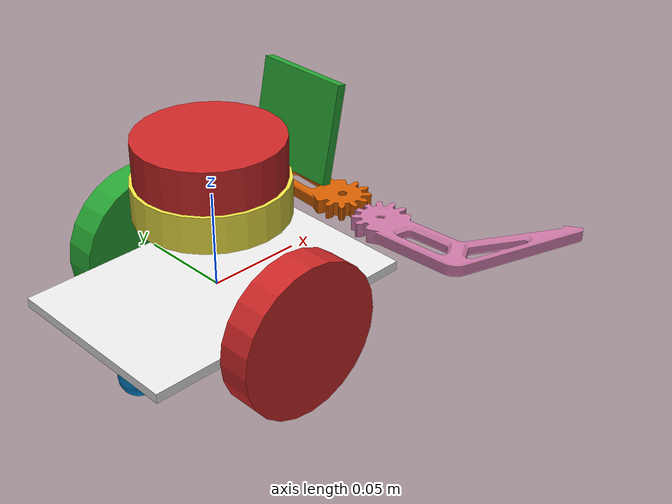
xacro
<?xml version="1.0"?>
<robot xmlns:xacro="http://www.ros.org/wiki/xacro" name="theclaw">
    <xacro:include filename="$(find theclaw)/urdf/common_properties.xacro"/>
    <xacro:include filename="$(find theclaw)/urdf/theclaw.gazebo.xacro"/>
    <xacro:property name="model_scale" value="0.01 0.01 0.01" />

    <link name="origin"/>

    <joint name="origin_joint" type="fixed">
        <parent link="origin"/>
        <child link="base_link"/>
        <origin xyz="0.0 0.0 0.0" rpy="0 0 0"/>
    </joint>

    <!-- Base -->

    <xacro:box_link name="base_link" mass="0.050" sx="0.150" sy="0.100" sz="0.005" />

    <!-- Camera -->

    <xacro:box_link name="camera_link" mass="0.001" sx="0.005" sy="0.050" sz="0.050" />

    <joint name="camera_joint" type="fixed">
        <parent link="base_link" />
        <child link="camera_link" />
        <origin rpy="0 0.2 0" xyz="0.055 0 0.07" />
    </joint>

    <!-- Laser -->

    <xacro:cylinder_link name="laser_base_link" mass="0.050" radius="${0.076/2}" length="0.0186" />

    <xacro:cylinder_link name="laser_link" mass="0.050" radius="${0.0725/2}" length="${0.041-0.0196}" />

    <joint name="laser_base_joint" type="fixed">
        <parent link="base_link" />
        <child link="laser_base_link" />
        <origin rpy="0 0 0" xyz="0 0 0.050" />
    </joint>

    <joint name="laser_head_joint" type="fixed">
        <parent link="laser_base_link" />
        <child link="laser_link" />
        <origin rpy="0 0 0" xyz="0 0 ${0.0186/2+(0.041-0.0196)/2}" />
    </joint>

    <!-- Wheels !-->

    <xacro:macro name="wheel" params="name *origin">
        <xacro:cylinder_link name="${name}_link" mass="0.035" radius="0.040" length="0.017" />
        <joint name="${name}_joint" type="continuous">
            <xacro:insert_block name="origin" />
            <parent link="base_link" />
            <child link="${name}_link" />
            <axis xyz="0 0 1" />
            <limit effort="0.07" velocity="16" />
        </joint>
        <transmission name="${name}_tran">
            <type>transmission_interface/SimpleTransmission</type>
            <joint name="${name}_joint">
                <hardwareInterface>hardware_interface/VelocityJointInterface</hardwareInterface>
            </joint>
            <actuator name="${name}_act">
                <hardwareInterface>hardware_interface/VelocityJointInterface</hardwareInterface>
                <mechanicalReduction>1</mechanicalReduction>
            </actuator>
        </transmission>
    </xacro:macro>

    <xacro:wheel name="wheel_left">
        <origin xyz="0 ${0.050+0.017/2} 0" rpy="${-pi/2} 0 0" />
    </xacro:wheel>

    <xacro:wheel name="wheel_right">
        <origin xyz="0 ${-0.050-0.017/2} 0" rpy="${pi/2} 0 ${pi}" />
    </xacro:wheel>

    <!-- Skids -->

    <xacro:macro name="skid" params="name *origin">
        <xacro:sphere_link name="${name}_link1" mass="0.001" radius="0.001" />
        <joint name="${name}_joint1" type="continuous">
            <xacro:insert_block name="origin" />
            <parent link="base_link" />
            <child link="${name}_link1" />
            <axis xyz="1 0 0" />
        </joint>
        <xacro:sphere_link name="${name}_link2" mass="0.001" radius="0.001" />
        <joint name="${name}_joint2" type="continuous">
            <parent link="${name}_link1" />
            <child link="${name}_link2" />
            <axis xyz="0 1 0" />
        </joint>
        <xacro:sphere_link name="${name}_link3" mass="0.010" radius="0.010" />
        <joint name="${name}_joint3" type="continuous">
            <parent link="${name}_link2" />
            <child link="${name}_link3" />
            <axis xyz="0 0 1" />
        </joint>
    </xacro:macro>

    <xacro:skid name="skid_front">
        <origin xyz="0.050 0 ${-0.040+0.010+0.001}" />
    </xacro:skid>

    <xacro:skid name="skid_rear">
        <origin xyz="-0.050 0 ${-0.040+0.010+0.001}" />
    </xacro:skid>

    <!-- Gripper -->

    <xacro:macro name="gripper_arm" params="name *origin">
        <link name="${name}_link">
            <visual>
                <origin xyz="-0.065 0.095 -0.005" rpy="0 0 ${-pi/2}"/>
                <geometry>
                    <mesh filename="package://theclaw/urdf/meshes/gripper_arm.stl" scale="0.001 0.001 0.001" />
                </geometry>
            </visual>
            <collision>
                <origin xyz="-0.065 0.095 -0.005" rpy="0 0 ${-pi/2}"/>
                <geometry>
                    <mesh filename="package://theclaw/urdf/meshes/gripper_arm.stl" scale="0.001 0.001 0.001" />
                </geometry>
            </collision>
            <xacro:inertial_sphere mass="0.010" radius="0.050">
                <origin xyz="0 0 0"/>
            </xacro:inertial_sphere>
        </link>
        <joint name="${name}_joint" type="revolute">
            <parent link="base_link" />
            <child link="${name}_link" />
            <xacro:insert_block name="origin" />
            <axis xyz="0 0 1" />
            <limit effort="0.07" velocity="10" lower="0" upper="1" />
        </joint>
        <transmission name="${name}_tran">
            <type>transmission_interface/SimpleTransmission</type>
            <joint name="${name}_joint">
                <hardwareInterface>hardware_interface/EffortJointInterface</hardwareInterface>
            </joint>
            <actuator name="${name}_act">
                <hardwareInterface>hardware_interface/EffortJointInterface</hardwareInterface>
                <mechanicalReduction>1</mechanicalReduction>
            </actuator>
        </transmission>
    </xacro:macro>

    <xacro:gripper_arm name="gripper_arm_left">
        <origin xyz="0.100 0.015 0.0" rpy="${pi} 0 0.75" />
    </xacro:gripper_arm>

    <xacro:gripper_arm name="gripper_arm_right">
        <origin xyz="0.100 -0.015 0.0" rpy="0 0 -0.75" />
    </xacro:gripper_arm>
</robot>

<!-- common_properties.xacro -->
<robot name="xacro_properties" xmlns:xacro="http://ros.org/wiki/xacro">

  <xacro:macro name="inertial_cylinder" params="mass radius length *origin">
    <inertial>
      <xacro:insert_block name="origin" />
      <mass value="${mass}" />
      <inertia ixx="${1/12*mass*(3*radius*radius+length*length)}" ixy="0.0" ixz="0.0"
               iyy="${1/12*mass*(3*radius*radius+length*length)}" iyz="0.0"
               izz="${0.5*mass*radius*radius}" />
    </inertial>
  </xacro:macro>

  <xacro:macro name="inertial_box" params="mass sx sy sz *origin">
    <inertial>
      <xacro:insert_block name="origin" />
      <mass value="${mass}" />
      <inertia ixx="${1/12*mass*(sy*sy+sz*sz)}" ixy="0.0" ixz="0.0"
               iyy="${1/12*mass*(sx*sx+sz*sz)}" iyz="0.0"
               izz="${1/12*mass*(sx*sx+sy*sy)}" />
    </inertial>
  </xacro:macro>

  <xacro:macro name="inertial_sphere" params="mass radius *origin">
    <inertial>
      <xacro:insert_block name="origin" />
      <mass value="${mass}" />
      <inertia ixx="${2/5*mass*radius*radius}" ixy="0.0" ixz="0.0"
               iyy="${2/5*mass*radius*radius}" iyz="0.0"
               izz="${2/5*mass*radius*radius}" />
    </inertial>
  </xacro:macro>

  <xacro:macro name="box_link" params="name mass sx sy sz">
    <link name="${name}">
      <visual>
        <origin rpy="0 0 0"/>
        <geometry>
          <box size="${sx} ${sy} ${sz}" />
        </geometry>
      </visual>
      <collision>
        <origin rpy="0 0 0"/>
        <geometry>
          <box size="${sx} ${sy} ${sz}" />
        </geometry>
      </collision>
      <xacro:inertial_box mass="${mass}" sx="${sx}" sy="${sy}" sz="${sz}">
        <origin rpy="0 0 0"/>
      </xacro:inertial_box>
    </link>
  </xacro:macro>

  <xacro:macro name="cylinder_link" params="name mass radius length">
    <link name="${name}">
      <visual>
        <origin rpy="0 0 0"/>
        <geometry>
          <cylinder radius="${radius}" length="${length}" />
        </geometry>
      </visual>
      <collision>
        <origin rpy="0 0 0"/>
        <geometry>
          <cylinder radius="${radius}" length="${length}" />
        </geometry>
      </collision>
      <xacro:inertial_cylinder mass="${mass}" radius="${radius}" length="${length}">
        <origin rpy="0 0 0"/>
      </xacro:inertial_cylinder>
    </link>
  </xacro:macro>

  <xacro:macro name="sphere_link" params="name mass radius">
    <link name="${name}">
      <visual>
        <origin rpy="0 0 0"/>
        <geometry>
          <sphere radius="${radius}" />
        </geometry>
      </visual>
      <collision>
        <origin rpy="0 0 0"/>
        <geometry>
          <sphere radius="${radius}" />
        </geometry>
      </collision>
      <xacro:inertial_sphere mass="${mass}" radius="${radius}">
        <origin rpy="0 0 0"/>
      </xacro:inertial_sphere>
    </link>
  </xacro:macro>

  <material name="black">
      <color rgba="0.0 0.0 0.0 1.0"/>
  </material>

  <material name="dark">
    <color rgba="0.3 0.3 0.3 1.0"/>
  </material>
  <material name="light_black">
    <color rgba="0.4 0.4 0.4 1.0"/>
  </material>

  <material name="blue">
    <color rgba="0.0 0.0 0.8 1.0"/>
  </material>

  <material name="green">
    <color rgba="0.0 0.8 0.0 1.0"/>
  </material>

  <material name="grey">
    <color rgba="0.5 0.5 0.5 1.0"/>
  </material>

  <material name="orange">
    <color rgba="${255/255} ${108/255} ${10/255} 1.0"/>
  </material>

  <material name="brown">
    <color rgba="${222/255} ${207/255} ${195/255} 1.0"/>
  </material>

  <material name="red">
    <color rgba="0.8 0.0 0.0 1.0"/>
  </material>

  <material name="white">
    <color rgba="1.0 1.0 1.0 1.0"/>
  </material>
</robot>
